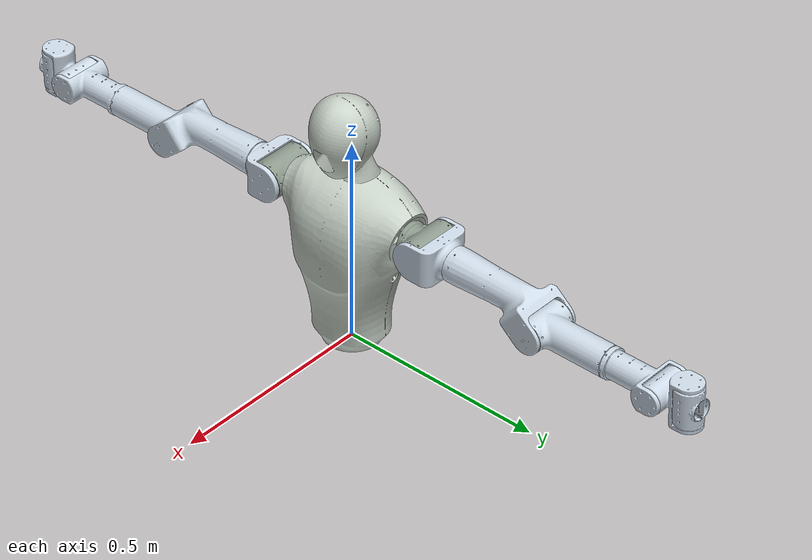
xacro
<?xml version="1.0"?>
<robot xmlns:xacro="http://www.ros.org/wiki/xacro" name="dual_arm">

  <xacro:include filename="$(find dual_arm_description)/urdf/dual_arm_w_mdh.urdf.xacro" />
  <xacro:include filename="$(find dual_arm_configure)/config/dual_arm.ros2_control.xacro" />

  <link name="world"/>

  <xacro:dual_arm name="dual_arm_demo" parent="world">
    <origin xyz="0 0 0" rpy="0 0 0"/>
  </xacro:dual_arm>

  <xacro:dual_arm_ros2_control
    sim_left="true" can_interface_left="can0"
    sim_right="true" can_interface_right="can1"
    namespace="upper_orin" />

</robot>

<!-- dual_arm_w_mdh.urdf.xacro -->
<robot xmlns:xacro="http://www.ros.org/wiki/xacro">

  <xacro:macro name="mdh_to_origin" params="a d alpha theta">
    <xacro:property name="c_alpha" value="${cos(alpha)}"/>
    <xacro:property name="s_alpha" value="${sin(alpha)}"/>
    <xacro:property name="c_theta" value="${cos(theta)}"/>
    <xacro:property name="s_theta" value="${sin(theta)}"/>

    <!-- Calculate translation -->
    <!-- Translation in local frame after R_z(theta) and T_z(d) is [a, 0, d] -->
    <!-- Then rotate by R_x(alpha) -->
    <xacro:property name="x" value="${a * 1 + 0 * 0 + d * 0}"/>  <!-- a*cos(0) + 0*cos(alpha)? Actually R_x(alpha) * [a,0,d] -->
    <xacro:property name="y" value="${a * 0 + 0 * c_alpha + d * -s_alpha}"/>
    <xacro:property name="z" value="${a * 0 + 0 * s_alpha + d * c_alpha}"/>

    <!-- Calculate rotation matrix from R_x(alpha) * R_z(theta) -->
    <xacro:property name="r00" value="${c_theta}"/>
    <xacro:property name="r01" value="${-s_theta}"/>
    <xacro:property name="r02" value="${0}"/>
    <xacro:property name="r10" value="${c_alpha * s_theta}"/>
    <xacro:property name="r11" value="${c_alpha * c_theta}"/>
    <xacro:property name="r12" value="${-s_alpha}"/>
    <xacro:property name="r20" value="${s_alpha * s_theta}"/>
    <xacro:property name="r21" value="${s_alpha * c_theta}"/>
    <xacro:property name="r22" value="${c_alpha}"/>

    <!-- Convert rotation matrix to RPY (fixed-axis XYZ) -->
    <!-- There are singularities at pitch = +-pi/2. We need to handle the general case. -->
    <!-- Check for gimbal lock by checking if r20^2 is close to 1 -->
    <xacro:property name="eps" value="1e-12"/>
    <xacro:property name="r20_sq" value="${r20 * r20}"/>

    <!-- If 1 - r20^2 > eps, then no gimbal lock -->
    <xacro:if value="${1 - r20_sq &gt; eps}">
      <!-- General case: no gimbal lock -->
      <xacro:property name="pitch" value="${atan2(-r20, sqrt(r00*r00 + r10*r10))}"/>
      <xacro:property name="roll" value="${atan2(r21, r22)}"/>
      <xacro:property name="yaw" value="${atan2(r10, r00)}"/>
    </xacro:if>
    <xacro:unless value="${1 - r20_sq &gt; eps}">
      <!-- Gimbal lock case: pitch = +-pi/2 -->
      <xacro:property name="pitch" value="${atan2(-r20, 0)}"/>
      <xacro:property name="roll" value="${0}"/>
      <xacro:property name="yaw" value="${atan2(-r01, r11)}"/>
    </xacro:unless>

    <!-- Output the origin transform -->
    <origin xyz="${x} ${y} ${z}" rpy="${roll} ${pitch} ${yaw}"/>
  </xacro:macro>

  <xacro:macro name="dual_arm" params="name parent *origin">

    <xacro:property name="M_PI" value="3.14159265359" />
    <xacro:property name="M_PI_2" value="1.57079632679" />

    <xacro:property name="left_alpha_1" value="${-90.000000 * M_PI / 180}" />
    <xacro:property name="left_alpha_2" value="${-90.005000 * M_PI / 180}" />
    <xacro:property name="left_alpha_3" value="${90.048000 * M_PI / 180}" />
    <xacro:property name="left_alpha_4" value="${-90.037000 * M_PI / 180}" />
    <xacro:property name="left_alpha_5" value="${89.920000 * M_PI / 180}" />
    <xacro:property name="left_alpha_6" value="${-89.729000 * M_PI / 180}" />
    <xacro:property name="left_alpha_7" value="${90.087000 * M_PI / 180}" />

    <xacro:property name="left_a_1" value="${0.000000 / 1000}" />
    <xacro:property name="left_a_2" value="${0.026000 / 1000}" />
    <xacro:property name="left_a_3" value="${0.063000 / 1000}" />
    <xacro:property name="left_a_4" value="${38.590000 / 1000}" />
    <xacro:property name="left_a_5" value="${0.055000 / 1000}" />
    <xacro:property name="left_a_6" value="${0.171000 / 1000}" />
    <xacro:property name="left_a_7" value="${66.305000 / 1000}" />

    <xacro:property name="left_theta_1" value="${90.022000 * M_PI / 180}" />
    <xacro:property name="left_theta_2" value="${0.334000 * M_PI / 180}" />
    <xacro:property name="left_theta_3" value="${0.171000 * M_PI / 180}" />
    <xacro:property name="left_theta_4" value="${-0.469000 * M_PI / 180}" />
    <xacro:property name="left_theta_5" value="${0.684000 * M_PI / 180}" />
    <xacro:property name="left_theta_6" value="${-91.261000 * M_PI / 180}" />
    <xacro:property name="left_theta_7" value="${-0.851000 * M_PI / 180}" />

    <xacro:property name="left_d_1" value="${209.000000 / 1000}" />
    <xacro:property name="left_d_2" value="${-0.126000 / 1000}" />
    <xacro:property name="left_d_3" value="${310.064000 / 1000}" />
    <xacro:property name="left_d_4" value="${0.176000 / 1000}" />
    <xacro:property name="left_d_5" value="${310.425000 / 1000}" />
    <xacro:property name="left_d_6" value="${0.366000 / 1000}" />
    <xacro:property name="left_d_7" value="${-1.004000 / 1000}" />

    <xacro:property name="right_alpha_1" value="${-90.000000 * M_PI / 180}" />
    <xacro:property name="right_alpha_2" value="${90.060000 * M_PI / 180}" />
    <xacro:property name="right_alpha_3" value="${-90.065000 * M_PI / 180}" />
    <xacro:property name="right_alpha_4" value="${90.053000 * M_PI / 180}" />
    <xacro:property name="right_alpha_5" value="${-89.968000 * M_PI / 180}" />
    <xacro:property name="right_alpha_6" value="${90.541000 * M_PI / 180}" />
    <xacro:property name="right_alpha_7" value="${-89.977000 * M_PI / 180}" />

    <xacro:property name="right_a_1" value="${0.000000 / 1000}" />
    <xacro:property name="right_a_2" value="${0.075000 / 1000}" />
    <xacro:property name="right_a_3" value="${-0.255000 / 1000}" />
    <xacro:property name="right_a_4" value="${38.818000 / 1000}" />
    <xacro:property name="right_a_5" value="${0.833000 / 1000}" />
    <xacro:property name="right_a_6" value="${-0.198000 / 1000}" />
    <xacro:property name="right_a_7" value="${68.070000 / 1000}" />

    <xacro:property name="right_theta_1" value="${90.000000 * M_PI / 180}" />
    <xacro:property name="right_theta_2" value="${0.161000 * M_PI / 180}" />
    <xacro:property name="right_theta_3" value="${0.386000 * M_PI / 180}" />
    <xacro:property name="right_theta_4" value="${0.202000 * M_PI / 180}" />
    <xacro:property name="right_theta_5" value="${0.062000 * M_PI / 180}" />
    <xacro:property name="right_theta_6" value="${-89.345000 * M_PI / 180}" />
    <xacro:property name="right_theta_7" value="${-0.200000 * M_PI / 180}" />

    <xacro:property name="right_d_1" value="${-209.000000 / 1000}" />
    <xacro:property name="right_d_2" value="${0.161000 / 1000}" />
    <xacro:property name="right_d_3" value="${-309.635000 / 1000}" />
    <xacro:property name="right_d_4" value="${0.165000 / 1000}" />
    <xacro:property name="right_d_5" value="${-309.665000 / 1000}" />
    <xacro:property name="right_d_6" value="${0.479000 / 1000}" />
    <xacro:property name="right_d_7" value="${-0.360000 / 1000}" />

    <link name="arm_base_link">
      <inertial>
        <origin
          xyz="0.00422660431318732 0.0234645266440117 0.245520280917725"
          rpy="0 0 0" />
        <mass
          value="5.9817893495402" />
        <inertia
          ixx="0.0763323573675301"
          ixy="-1.0074625706827E-05"
          ixz="0.00159918574737791"
          iyy="0.0636485948623856"
          iyz="2.44985620056427E-05"
          izz="0.0205452676830648" />
      </inertial>

      <visual>
        <origin xyz="0 0 0" rpy="0 0 0" />
        <geometry>
          <mesh filename="package://dual_arm_description/meshes/visual/base_link.STL" />
        </geometry>
        <material name="">
          <color rgba="0.78 0.82 0.78 1" />
        </material>
      </visual>

      <collision>
        <origin xyz="0 0 0" rpy="0 0 0" />
        <geometry>
          <mesh filename="package://dual_arm_description/meshes/collision/base_link_simpified.STL" />
        </geometry>
      </collision>
    </link>

    <joint name="arm_base_joint" type="fixed">
      <parent link="${parent}"/>
      <child link="arm_base_link"/>
      <xacro:insert_block name="origin" />
      <axis xyz="0 0 1"/>
    </joint>

    <link name="arm_ref_frame" />

    <joint name="arm_ref_joint" type="fixed">
      <parent link="arm_base_link"/>
      <child link="arm_ref_frame"/>
      <origin xyz="-0.0078 0 0.32721" rpy="0 0 0" />
    </joint>

    <link name="link1_right">
      <inertial>
        <origin
          xyz="-2.63462902565514E-05 0.0078456858397038 -0.0150193737682288"
          rpy="0 0 0" />
        <mass
          value="1.80177628827918" />
        <inertia
          ixx="0.00125384727993194"
          ixy="-1.9831651733611E-06"
          ixz="-5.2634557942785E-07"
          iyy="0.0012637095931909"
          iyz="-2.91199249955174E-05"
          izz="0.00129616591017272" />
      </inertial>

      <visual>
        <origin xyz="0 0 0" rpy="0 0 0" />
        <geometry>
          <mesh filename="package://dual_arm_description/meshes/visual/link1_mdh_right.STL" />
        </geometry>
        <material name="">
          <color rgba="0.55 0.6 0.55 1" />
        </material>
      </visual>

      <collision>
        <origin xyz="0 0 0" rpy="0 0 0" />
        <geometry>
          <mesh filename="package://dual_arm_description/meshes/collision/link1_mdh_right.STL" />
        </geometry>
      </collision>
    </link>

    <joint name="joint1_right" type="revolute">
      <xacro:mdh_to_origin
        a="${right_a_1}"
        d="${right_d_1}"
        alpha="${right_alpha_1}"
        theta="${right_theta_1}" />
      <parent link="arm_ref_frame" />
      <child link="link1_right" />
      <axis xyz="0 0 -1" />
      <limit
        lower="-3.14159265359"
        upper="3.14159265359"
        effort="0"
        velocity="1.0471975512" />
    </joint>

    <link name="link2_right">
      <inertial>
        <origin
          xyz="-0.0184912045878147 0.00162452489349674 0.013616878292953"
          rpy="0 0 0" />
        <mass
          value="0.722746235912474" />
        <inertia
          ixx="0.00108593997275333"
          ixy="1.84897338808204E-06"
          ixz="-3.09028194254925E-05"
          iyy="0.00101515721108136"
          iyz="4.99580004142565E-06"
          izz="0.000753458785916066" />
      </inertial>

      <visual>
        <origin xyz="0 0 0" rpy="0 0 0" />
        <geometry>
          <mesh filename="package://dual_arm_description/meshes/visual/link2_mdh_right.STL" />
        </geometry>
        <material name="">
          <color rgba="0.8 0.85 0.9 1" />
        </material>
      </visual>

      <collision>
        <origin xyz="0 0 0" rpy="0 0 0" />
        <geometry>
          <mesh filename="package://dual_arm_description/meshes/collision/link2_mdh_right.STL" />
        </geometry>
      </collision>
    </link>

    <joint name="joint2_right" type="revolute">
      <xacro:mdh_to_origin
        a="${right_a_2}"
        d="${right_d_2}"
        alpha="${right_alpha_2}"
        theta="${right_theta_2}" />
      <parent link="link1_right" />
      <child link="link2_right" />
      <axis xyz="0 0 1" />
      <limit
        lower="-1.5707963268"
        upper="0.872664626"
        effort="0"
        velocity="1.0471975512" />
    </joint>

    <link name="link3_right">
      <inertial>
        <origin
          xyz="0.00248327358203637 0.000983930202917094 0.0848422618072029"
          rpy="0 0 0" />
        <mass
          value="1.73968703689437" />
        <inertia
          ixx="0.00293287578739714"
          ixy="-4.78768415153896E-05"
          ixz="-0.000146666097337501"
          iyy="0.00269293929456573"
          iyz="-6.8741663865335E-05"
          izz="0.00158103557348051" />
      </inertial>

      <visual>
        <origin xyz="0 0 0" rpy="0 0 0" />
        <geometry>
          <mesh filename="package://dual_arm_description/meshes/visual/link3_mdh_right.STL" />
        </geometry>
        <material name="">
          <color rgba="0.8 0.85 0.9 1" />
        </material>
      </visual>

      <collision>
        <origin xyz="0 0 0" rpy="0 0 0" />
        <geometry>
          <mesh filename="package://dual_arm_description/meshes/collision/link3_mdh_right.STL" />
        </geometry>
      </collision>
    </link>

    <joint name="joint3_right" type="revolute">
      <xacro:mdh_to_origin
        a="${right_a_3}"
        d="${right_d_3}"
        alpha="${right_alpha_3}"
        theta="${right_theta_3}" />
      <parent link="link2_right" />
      <child link="link3_right" />
      <axis xyz="0 0 -1" />
      <limit
        lower="-3.14159265359"
        upper="3.14159265359"
        effort="0"
        velocity="1.0471975512" />
    </joint>

    <link name="link4_right">
      <inertial>
        <origin
          xyz="-7.95973702305552E-05 -0.0209082375496418 -0.00839273362275947"
          rpy="0 0 0" />
        <mass
          value="1.29895950213977" />
        <inertia
          ixx="0.00236791349815647"
          ixy="1.40731293258229E-06"
          ixz="3.26442183375437E-06"
          iyy="0.000772031871168032"
          iyz="-1.41965703385309E-05"
          izz="0.00230845350224412" />
      </inertial>

      <visual>
        <origin xyz="0 0 0" rpy="0 0 0" />
        <geometry>
          <mesh filename="package://dual_arm_description/meshes/visual/link4_mdh_right.STL" />
        </geometry>
        <material name="">
          <color rgba="0.8 0.85 0.9 1" />
        </material>
      </visual>

      <collision>
        <origin xyz="0 0 0" rpy="0 0 0" />
        <geometry>
          <mesh filename="package://dual_arm_description/meshes/collision/link4_mdh_right.STL" />
        </geometry>
      </collision>
    </link>

    <joint name="joint4_right" type="revolute">
      <xacro:mdh_to_origin
        a="${right_a_4}"
        d="${right_d_4}"
        alpha="${right_alpha_4}"
        theta="${right_theta_4}" />
      <parent link="link3_right" />
      <child link="link4_right" />
      <axis xyz="0 0 -1" />
      <limit
        lower="-2.5307274154"
        upper="0.6108652382"
        effort="0"
        velocity="1.0471975512" />
    </joint>

    <link name="link5_right">
      <inertial>
        <origin
          xyz="6.30477802943119E-05 0.00086654932953717 -0.0916349080676876"
          rpy="0 0 0" />
        <mass
          value="0.943914536026674" />
        <inertia
          ixx="0.000931990246154717"
          ixy="-9.21631995424494E-06"
          ixz="-2.51581497978434E-06"
          iyy="0.000811077416357626"
          iyz="-3.8715241803587E-05"
          izz="0.000572990604772896" />
      </inertial>

      <visual>
        <origin xyz="0 0 0" rpy="0 0 0" />
        <geometry>
          <mesh filename="package://dual_arm_description/meshes/visual/link5_mdh_right.STL" />
        </geometry>
        <material name="">
          <color rgba="0.8 0.85 0.9 1" />
        </material>
      </visual>

      <collision>
        <origin xyz="0 0 0" rpy="0 0 0" />
        <geometry>
          <mesh filename="package://dual_arm_description/meshes/collision/link5_mdh_right.STL" />
        </geometry>
      </collision>
    </link>

    <joint name="joint5_right" type="revolute">
      <xacro:mdh_to_origin
        a="${right_a_5}"
        d="${right_d_5}"
        alpha="${right_alpha_5}"
        theta="${right_theta_5}" />
      <parent link="link4_right" />
      <child link="link5_right" />
      <axis xyz="0 0 -1" />
      <limit
        lower="-3.14159265359"
        upper="3.14159265359"
        effort="0"
        velocity="1.5707963268" />
    </joint>

    <link name="link6_right">
      <inertial>
        <origin
          xyz="0.00799400089214897 -0.00109797731745931 0.00802800673798493"
          rpy="0 0 0" />
        <mass
          value="0.87461121686283" />
        <inertia
          ixx="0.000482453783893589"
          ixy="2.78696828473613E-05"
          ixz="-1.16479121693327E-05"
          iyy="0.000519252452409952"
          iyz="2.15614721648117E-07"
          izz="0.000655950625877922" />
      </inertial>

      <visual>
        <origin xyz="0 0 0" rpy="0 0 0" />
        <geometry>
          <mesh filename="package://dual_arm_description/meshes/visual/link6_mdh_right.STL" />
        </geometry>
        <material name="">
          <color rgba="0.8 0.85 0.9 1" />
        </material>
      </visual>

      <collision>
        <origin xyz="0 0 0" rpy="0 0 0" />
        <geometry>
          <mesh filename="package://dual_arm_description/meshes/collision/link6_mdh_right.STL" />
        </geometry>
      </collision>
    </link>

    <joint name="joint6_right" type="revolute">
      <xacro:mdh_to_origin
        a="${right_a_6}"
        d="${right_d_6}"
        alpha="${right_alpha_6}"
        theta="${right_theta_6}" />
      <parent link="link5_right" />
      <child link="link6_right" />
      <axis xyz="0 0 -1" />
      <limit
        lower="-1.2217304764"
        upper="1.2217304764"
        effort="0"
        velocity="1.5707963268" />
    </joint>

    <link name="link7_right">
      <inertial>
        <origin
          xyz="0.00118014491083041 -0.000343927719202997 0.00924911342229717"
          rpy="0 0 0" />
        <mass
          value="0.755429789120553" />
        <inertia
          ixx="0.000269322287342564"
          ixy="6.31271638827115E-06"
          ixz="-7.63621824391722E-08"
          iyy="0.000289179185961173"
          iyz="1.47888072820137E-08"
          izz="0.000297353940351334" />
      </inertial>

      <visual>
        <origin xyz="0 0 0" rpy="0 0 0" />
        <geometry>
          <mesh filename="package://dual_arm_description/meshes/visual/link7_mdh_right.STL" />
        </geometry>
        <material name="">
          <color rgba="0.8 0.85 0.9 1" />
        </material>
      </visual>

      <collision>
        <origin xyz="0 0 0" rpy="0 0 0" />
        <geometry>
          <mesh filename="package://dual_arm_description/meshes/collision/link7_mdh_right.STL" />
        </geometry>
      </collision>
    </link>

    <joint name="joint7_right" type="revolute">
      <xacro:mdh_to_origin
        a="${right_a_7}"
        d="${right_d_7}"
        alpha="${right_alpha_7}"
        theta="${right_theta_7}" />
      <parent link="link6_right" />
      <child link="link7_right" />
      <axis xyz="0 0 1" />
      <limit
        lower="-1.2217304764"
        upper="1.2217304764"
        effort="0"
        velocity="1.5707963268" />
    </joint>

    <link name="link1_left">
      <inertial>
        <origin
          xyz="-1.38487613492444E-05 -0.00220692224137892 0.00921894631138384"
          rpy="0 0 0" />
        <mass
          value="0.519339306262197" />
        <inertia
          ixx="0.000497409399128485"
          ixy="1.04568338202191E-06"
          ixz="6.91360153863362E-08"
          iyy="0.000419809278764117"
          iyz="-1.06406718218775E-05"
          izz="0.000437145559325128" />
      </inertial>

      <visual>
        <origin xyz="0 0 0" rpy="0 0 0" />
        <geometry>
          <mesh filename="package://dual_arm_description/meshes/visual/link1_mdh_left.STL" />
        </geometry>
        <material name="">
          <color rgba="0.55 0.6 0.55 1" />
        </material>
      </visual>

      <collision>
        <origin xyz="0 0 0" rpy="0 0 0" />
        <geometry>
          <mesh filename="package://dual_arm_description/meshes/collision/link1_mdh_left.STL" />
        </geometry>
      </collision>
    </link>

    <joint name="joint1_left" type="revolute">
      <xacro:mdh_to_origin
        a="${left_a_1}"
        d="${left_d_1}"
        alpha="${left_alpha_1}"
        theta="${left_theta_1}" />
      <parent link="arm_ref_frame" />
      <child link="link1_left" />
      <axis xyz="0 0 1" />
      <limit
        lower="-3.14159265359"
        upper="3.14159265359"
        effort="0"
        velocity="1.0471975512" />
    </joint>

    <link name="link2_left">
      <inertial>
        <origin
          xyz="0.005428504454426 0.0228357969273356 0.00572697696991797"
          rpy="0 0 0" />
        <mass
          value="0.254319595126366" />
        <inertia
          ixx="0.000415729754126609"
          ixy="1.31927673128639E-06"
          ixz="3.33686056832701E-06"
          iyy="0.000437161837114042"
          iyz="1.09061160250672E-05"
          izz="0.00033601383844043" />
      </inertial>

      <visual>
        <origin xyz="0 0 0" rpy="0 0 0" />
        <geometry>
          <mesh filename="package://dual_arm_description/meshes/visual/link2_mdh_left.STL" />
        </geometry>
        <material name="">
          <color rgba="0.8 0.85 0.9 1" />
        </material>
      </visual>

      <collision>
        <origin xyz="0 0 0" rpy="0 0 0" />
        <geometry>
          <mesh filename="package://dual_arm_description/meshes/collision/link2_mdh_left.STL" />
        </geometry>
      </collision>
    </link>

    <joint name="joint2_left" type="revolute">
      <xacro:mdh_to_origin
        a="${left_a_2}"
        d="${left_d_2}"
        alpha="${left_alpha_2}"
        theta="${left_theta_2}" />
      <parent link="link1_left" />
      <child link="link2_left" />
      <axis xyz="0 0 1" />
      <limit
        lower="-0.872664626"
        upper="1.5707963268"
        effort="0"
        velocity="1.0471975512" />
    </joint>

    <link name="link3_left">
      <inertial>
        <origin
          xyz="0.00322397114526773 0.000846637475657469 0.0985307535142525"
          rpy="0 0 0" />
        <mass
          value="0.676008865226733" />
        <inertia
          ixx="0.00175191112419296"
          ixy="-1.70722602314306E-05"
          ixz="-0.000113910532811989"
          iyy="0.00172370166259428"
          iyz="-2.23111533397412E-05"
          izz="0.000671070067083804" />
      </inertial>

      <visual>
        <origin xyz="0 0 0" rpy="0 0 0" />
        <geometry>
          <mesh filename="package://dual_arm_description/meshes/visual/link3_mdh_left.STL" />
        </geometry>
        <material name="">
          <color rgba="0.8 0.85 0.9 1" />
        </material>
      </visual>

      <collision>
        <origin xyz="0 0 0" rpy="0 0 0" />
        <geometry>
          <mesh filename="package://dual_arm_description/meshes/collision/link3_mdh_left.STL" />
        </geometry>
      </collision>
    </link>

    <joint name="joint3_left" type="revolute">
      <xacro:mdh_to_origin
        a="${left_a_3}"
        d="${left_d_3}"
        alpha="${left_alpha_3}"
        theta="${left_theta_3}" />
      <parent link="link2_left" />
      <child link="link3_left" />
      <axis xyz="0 0 1" />
      <limit
        lower="-3.14159265359"
        upper="3.14159265359"
        effort="0"
        velocity="1.0471975512" />
    </joint>

    <link name="link4_left">
      <inertial>
        <origin
          xyz="0.000480217516793946 -0.0308900131866496 -0.00901727946172001"
          rpy="0 0 0" />
        <mass
          value="0.48418201880971" />
        <inertia
          ixx="0.00123812570090002"
          ixy="5.23140032173907E-07"
          ixz="1.19960770459451E-06"
          iyy="0.000331676843654269"
          iyz="-5.21588754606305E-06"
          izz="0.00115165867928039" />
      </inertial>

      <visual>
        <origin xyz="0 0 0" rpy="0 0 0" />
        <geometry>
          <mesh filename="package://dual_arm_description/meshes/visual/link4_mdh_left.STL" />
        </geometry>
        <material name="">
          <color rgba="0.8 0.85 0.9 1" />
        </material>
      </visual>

      <collision>
        <origin xyz="0 0 0" rpy="0 0 0" />
        <geometry>
          <mesh filename="package://dual_arm_description/meshes/collision/link4_mdh_left.STL" />
        </geometry>
      </collision>
    </link>

    <joint name="joint4_left" type="revolute">
      <xacro:mdh_to_origin
        a="${left_a_4}"
        d="${left_d_4}"
        alpha="${left_alpha_4}"
        theta="${left_theta_4}" />
      <parent link="link3_left" />
      <child link="link4_left" />
      <axis xyz="0 0 -1" />
      <limit
        lower="-2.5307274154"
        upper="0.6108652382"
        effort="0"
        velocity="1.0471975512" />
    </joint>

    <link name="link5_left">
      <inertial>
        <origin
          xyz="-0.0643601135478111 0.0140250637094898 0.0715567294891026"
          rpy="0 0 0" />
        <mass
          value="0.326509644339214" />
        <inertia
          ixx="0.000455286167226561"
          ixy="-6.21144318910534E-08"
          ixz="1.5952520834946E-07"
          iyy="0.000421161448279437"
          iyz="1.33161793403503E-05"
          izz="0.000221357327075186" />
      </inertial>

      <visual>
        <origin xyz="0 0 0" rpy="0 0 0" />
        <geometry>
          <mesh filename="package://dual_arm_description/meshes/visual/link5_mdh_left.STL" />
        </geometry>
        <material name="">
          <color rgba="0.8 0.85 0.9 1" />
        </material>
      </visual>

      <collision>
        <origin xyz="0 0 0" rpy="0 0 0" />
        <geometry>
          <mesh filename="package://dual_arm_description/meshes/collision/link5_mdh_left.STL" />
        </geometry>
      </collision>
    </link>

    <joint name="joint5_left" type="revolute">
      <xacro:mdh_to_origin
        a="${left_a_5}"
        d="${left_d_5}"
        alpha="${left_alpha_5}"
        theta="${left_theta_5}" />
      <parent link="link4_left" />
      <child link="link5_left" />
      <axis xyz="0 0 1" />
      <limit
        lower="-3.14159265359"
        upper="3.14159265359"
        effort="0"
        velocity="1.5707963268" />
    </joint>

    <link name="link6_left">
      <inertial>
        <origin
          xyz="0.0139449905576898 -0.0635113754456291 -0.0148949144092116"
          rpy="0 0 0" />
        <mass
          value="0.300349301564401" />
        <inertia
          ixx="0.000207383702494719"
          ixy="-1.01407329092508E-05"
          ixz="4.40309165631906E-06"
          iyy="0.000272801128720996"
          iyz="3.59958116245319E-07"
          izz="0.000292271582435295" />
      </inertial>

      <visual>
        <origin xyz="0 0 0" rpy="0 0 0" />
        <geometry>
          <mesh filename="package://dual_arm_description/meshes/visual/link6_mdh_left.STL" />
        </geometry>
        <material name="">
          <color rgba="0.8 0.85 0.9 1" />
        </material>
      </visual>

      <collision>
        <origin xyz="0 0 0" rpy="0 0 0" />
        <geometry>
          <mesh filename="package://dual_arm_description/meshes/collision/link6_mdh_left.STL" />
        </geometry>
      </collision>
    </link>

    <joint name="joint6_left" type="revolute">
      <xacro:mdh_to_origin
        a="${left_a_6}"
        d="${left_d_6}"
        alpha="${left_alpha_6}"
        theta="${left_theta_6}" />
      <parent link="link5_left" />
      <child link="link6_left" />
      <axis xyz="0 0 -1" />
      <limit
        lower="-1.2217304764"
        upper="1.2217304764"
        effort="0"
        velocity="1.5707963268" />
    </joint>

    <link name="link7_left">
      <inertial>
        <origin
          xyz="-0.00718537346551285 0.00450550446363263 -0.053636179982383"
          rpy="0 0 0" />
        <mass
          value="0.19917869084678" />
        <inertia
          ixx="9.43575392774057E-05"
          ixy="-7.89652831426536E-08"
          ixz="4.53006716366247E-09"
          iyy="7.82627630717662E-05"
          iyz="1.37839947237261E-07"
          izz="7.2998654079569E-05" />
      </inertial>

      <visual>
        <origin xyz="0 0 0" rpy="0 0 0" />
        <geometry>
          <mesh filename="package://dual_arm_description/meshes/visual/link7_mdh_left.STL" />
        </geometry>
        <material name="">
          <color rgba="0.8 0.85 0.9 1" />
        </material>
      </visual>

      <collision>
        <origin xyz="0 0 0" rpy="0 0 0" />
        <geometry>
          <mesh filename="package://dual_arm_description/meshes/collision/link7_mdh_left.STL" />
        </geometry>
      </collision>
    </link>

    <joint name="joint7_left" type="revolute">
      <xacro:mdh_to_origin
        a="${left_a_7}"
        d="${left_d_7}"
        alpha="${left_alpha_7}"
        theta="${left_theta_7}" />
      <parent link="link6_left" />
      <child link="link7_left" />
      <axis xyz="0 0 -1" />
      <limit
        lower="-1.2217304764"
        upper="1.2217304764"
        effort="0"
        velocity="1.5707963268" />
    </joint>

  </xacro:macro>
</robot>
